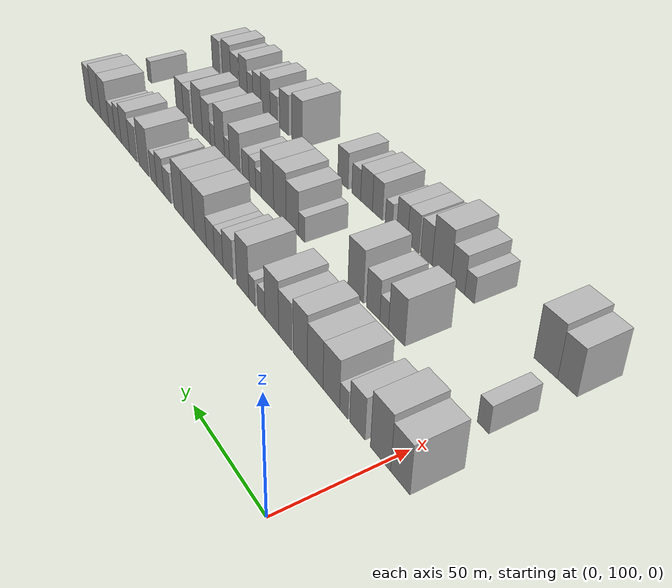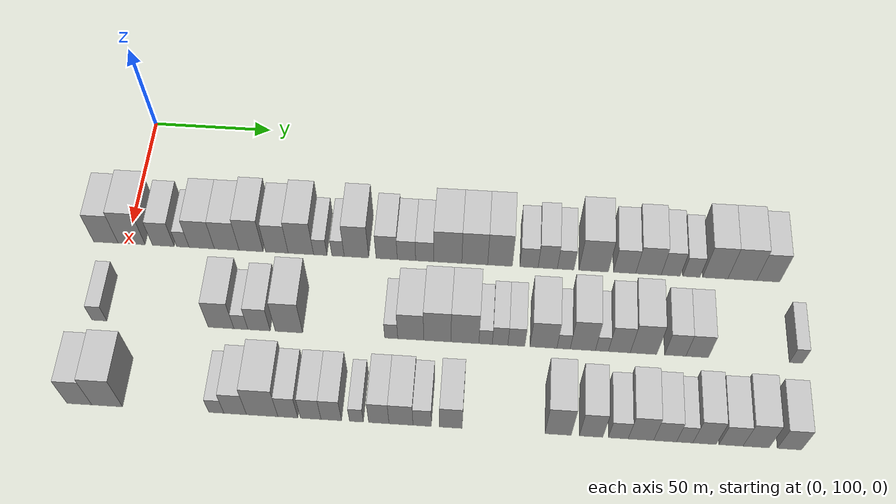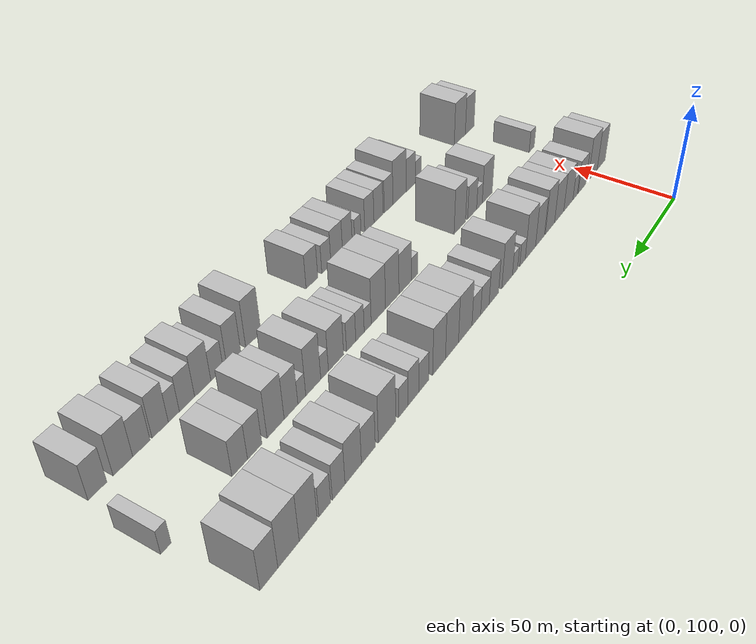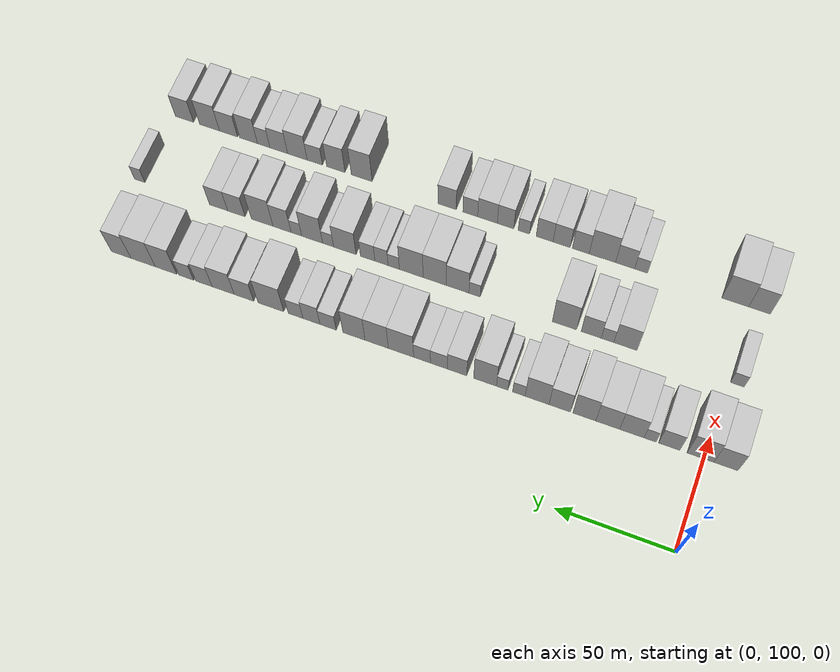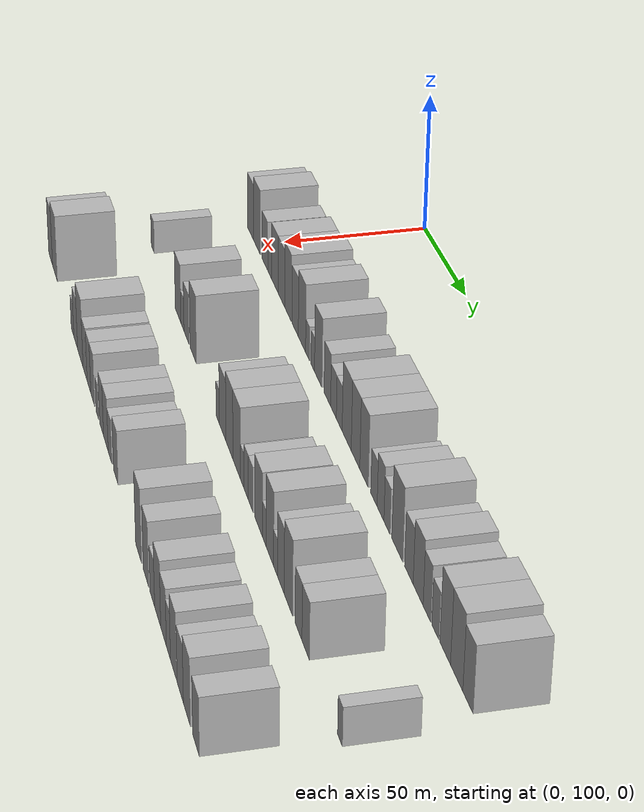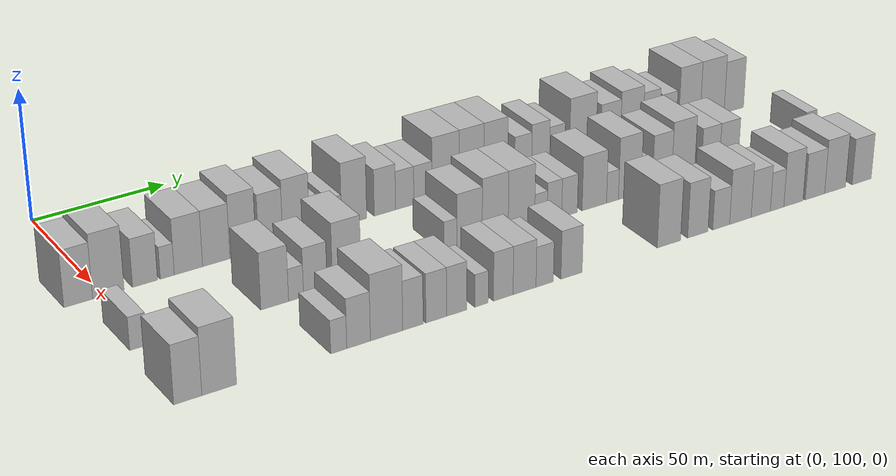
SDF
<sdf version="1.6">
 <world name="default">
  <model name="building_49">
   <static>1</static>
   <pose>50.0000 91.0026 0 0.000000 0.000000 0.000000</pose>
   <link name="link">
    <pose>0 0 10.50 0 0 0</pose>
    <collision name="collision"><geometry><box><size>20.0000 10.0822 21.0000</size></box></geometry></collision>
    <visual name="visual">
     <cast_shadows>0</cast_shadows>
     <geometry><box><size>20.0000 10.0822 21.0000</size></box></geometry>
     <material>
      <script>
       <uri>model://HANNAS_wall/materials/scripts</uri>
       <uri>model://HANNAS_wall/materials/textures</uri>
       <name>vrc/HANNAS_wall</name>
      </script>
     </material>
    </visual>
   </link>
  </model>
  <model name="building_50">
   <static>1</static>
   <pose>50.0000 101.6119 0 0.000000 0.000000 0.000000</pose>
   <link name="link">
    <pose>0 0 12.00 0 0 0</pose>
    <collision name="collision"><geometry><box><size>20.0000 11.1366 24.0000</size></box></geometry></collision>
    <visual name="visual">
     <cast_shadows>0</cast_shadows>
     <geometry><box><size>20.0000 11.1366 24.0000</size></box></geometry>
     <material>
      <script>
       <uri>model://HANNAS_wall/materials/scripts</uri>
       <uri>model://HANNAS_wall/materials/textures</uri>
       <name>vrc/HANNAS_wall</name>
      </script>
     </material>
    </visual>
   </link>
  </model>
  <model name="building_51">
   <static>1</static>
   <pose>50.0000 114.6626 0 0.000000 0.000000 0.000000</pose>
   <link name="link">
    <pose>0 0 9.00 0 0 0</pose>
    <collision name="collision"><geometry><box><size>20.0000 8.9647 18.0000</size></box></geometry></collision>
    <visual name="visual">
     <cast_shadows>0</cast_shadows>
     <geometry><box><size>20.0000 8.9647 18.0000</size></box></geometry>
     <material>
      <script>
       <uri>model://HANNAS_wall/materials/scripts</uri>
       <uri>model://HANNAS_wall/materials/textures</uri>
       <name>vrc/HANNAS_wall</name>
      </script>
     </material>
    </visual>
   </link>
  </model>
  <model name="building_52">
   <static>1</static>
   <pose>50.0000 122.6843 0 0.000000 0.000000 0.000000</pose>
   <link name="link">
    <pose>0 0 6.00 0 0 0</pose>
    <collision name="collision"><geometry><box><size>20.0000 5.0787 12.0000</size></box></geometry></collision>
    <visual name="visual">
     <cast_shadows>0</cast_shadows>
     <geometry><box><size>20.0000 5.0787 12.0000</size></box></geometry>
     <material>
      <script>
       <uri>model://HANNAS_wall/materials/scripts</uri>
       <uri>model://HANNAS_wall/materials/textures</uri>
       <name>vrc/HANNAS_wall</name>
      </script>
     </material>
    </visual>
   </link>
  </model>
  <model name="building_53">
   <static>1</static>
   <pose>50.0000 130.4150 0 0.000000 0.000000 0.000000</pose>
   <link name="link">
    <pose>0 0 10.50 0 0 0</pose>
    <collision name="collision"><geometry><box><size>20.0000 10.3826 21.0000</size></box></geometry></collision>
    <visual name="visual">
     <cast_shadows>0</cast_shadows>
     <geometry><box><size>20.0000 10.3826 21.0000</size></box></geometry>
     <material>
      <script>
       <uri>model://HANNAS_wall/materials/scripts</uri>
       <uri>model://HANNAS_wall/materials/textures</uri>
       <name>vrc/HANNAS_wall</name>
      </script>
     </material>
    </visual>
   </link>
  </model>
  <model name="building_54">
   <static>1</static>
   <pose>50.0000 140.6762 0 0.000000 0.000000 0.000000</pose>
   <link name="link">
    <pose>0 0 10.50 0 0 0</pose>
    <collision name="collision"><geometry><box><size>20.0000 10.1399 21.0000</size></box></geometry></collision>
    <visual name="visual">
     <cast_shadows>0</cast_shadows>
     <geometry><box><size>20.0000 10.1399 21.0000</size></box></geometry>
     <material>
      <script>
       <uri>model://HANNAS_wall/materials/scripts</uri>
       <uri>model://HANNAS_wall/materials/textures</uri>
       <name>vrc/HANNAS_wall</name>
      </script>
     </material>
    </visual>
   </link>
  </model>
  <model name="building_55">
   <static>1</static>
   <pose>50.0000 150.6441 0 0.000000 0.000000 0.000000</pose>
   <link name="link">
    <pose>0 0 12.00 0 0 0</pose>
    <collision name="collision"><geometry><box><size>20.0000 9.7958 24.0000</size></box></geometry></collision>
    <visual name="visual">
     <cast_shadows>0</cast_shadows>
     <geometry><box><size>20.0000 9.7958 24.0000</size></box></geometry>
     <material>
      <script>
       <uri>model://HANNAS_wall/materials/scripts</uri>
       <uri>model://HANNAS_wall/materials/textures</uri>
       <name>vrc/HANNAS_wall</name>
      </script>
     </material>
    </visual>
   </link>
  </model>
  <model name="building_56">
   <static>1</static>
   <pose>50.0000 161.1490 0 0.000000 0.000000 0.000000</pose>
   <link name="link">
    <pose>0 0 10.50 0 0 0</pose>
    <collision name="collision"><geometry><box><size>20.0000 9.2140 21.0000</size></box></geometry></collision>
    <visual name="visual">
     <cast_shadows>0</cast_shadows>
     <geometry><box><size>20.0000 9.2140 21.0000</size></box></geometry>
     <material>
      <script>
       <uri>model://HANNAS_wall/materials/scripts</uri>
       <uri>model://HANNAS_wall/materials/textures</uri>
       <name>vrc/HANNAS_wall</name>
      </script>
     </material>
    </visual>
   </link>
  </model>
  <model name="building_57">
   <static>1</static>
   <pose>50.0000 170.9249 0 0.000000 0.000000 0.000000</pose>
   <link name="link">
    <pose>0 0 12.00 0 0 0</pose>
    <collision name="collision"><geometry><box><size>20.0000 10.3378 24.0000</size></box></geometry></collision>
    <visual name="visual">
     <cast_shadows>0</cast_shadows>
     <geometry><box><size>20.0000 10.3378 24.0000</size></box></geometry>
     <material>
      <script>
       <uri>model://HANNAS_wall/materials/scripts</uri>
       <uri>model://HANNAS_wall/materials/textures</uri>
       <name>vrc/HANNAS_wall</name>
      </script>
     </material>
    </visual>
   </link>
  </model>
  <model name="building_58">
   <static>1</static>
   <pose>50.0000 178.8278 0 0.000000 0.000000 0.000000</pose>
   <link name="link">
    <pose>0 0 6.00 0 0 0</pose>
    <collision name="collision"><geometry><box><size>20.0000 5.4681 12.0000</size></box></geometry></collision>
    <visual name="visual">
     <cast_shadows>0</cast_shadows>
     <geometry><box><size>20.0000 5.4681 12.0000</size></box></geometry>
     <material>
      <script>
       <uri>model://HANNAS_wall/materials/scripts</uri>
       <uri>model://HANNAS_wall/materials/textures</uri>
       <name>vrc/HANNAS_wall</name>
      </script>
     </material>
    </visual>
   </link>
  </model>
  <model name="building_59">
   <static>1</static>
   <pose>50.0000 186.0637 0 0.000000 0.000000 0.000000</pose>
   <link name="link">
    <pose>0 0 6.00 0 0 0</pose>
    <collision name="collision"><geometry><box><size>20.0000 5.0036 12.0000</size></box></geometry></collision>
    <visual name="visual">
     <cast_shadows>0</cast_shadows>
     <geometry><box><size>20.0000 5.0036 12.0000</size></box></geometry>
     <material>
      <script>
       <uri>model://HANNAS_wall/materials/scripts</uri>
       <uri>model://HANNAS_wall/materials/textures</uri>
       <name>vrc/HANNAS_wall</name>
      </script>
     </material>
    </visual>
   </link>
  </model>
  <model name="building_60">
   <static>1</static>
   <pose>50.0000 193.5374 0 0.000000 0.000000 0.000000</pose>
   <link name="link">
    <pose>0 0 12.00 0 0 0</pose>
    <collision name="collision"><geometry><box><size>20.0000 9.9438 24.0000</size></box></geometry></collision>
    <visual name="visual">
     <cast_shadows>0</cast_shadows>
     <geometry><box><size>20.0000 9.9438 24.0000</size></box></geometry>
     <material>
      <script>
       <uri>model://HANNAS_wall/materials/scripts</uri>
       <uri>model://HANNAS_wall/materials/textures</uri>
       <name>vrc/HANNAS_wall</name>
      </script>
     </material>
    </visual>
   </link>
  </model>
  <model name="building_61">
   <static>1</static>
   <pose>50.0000 205.8110 0 0.000000 0.000000 0.000000</pose>
   <link name="link">
    <pose>0 0 9.00 0 0 0</pose>
    <collision name="collision"><geometry><box><size>20.0000 8.6033 18.0000</size></box></geometry></collision>
    <visual name="visual">
     <cast_shadows>0</cast_shadows>
     <geometry><box><size>20.0000 8.6033 18.0000</size></box></geometry>
     <material>
      <script>
       <uri>model://HANNAS_wall/materials/scripts</uri>
       <uri>model://HANNAS_wall/materials/textures</uri>
       <name>vrc/HANNAS_wall</name>
      </script>
     </material>
    </visual>
   </link>
  </model>
  <model name="building_62">
   <static>1</static>
   <pose>50.0000 213.8199 0 0.000000 0.000000 0.000000</pose>
   <link name="link">
    <pose>0 0 7.50 0 0 0</pose>
    <collision name="collision"><geometry><box><size>20.0000 7.4147 15.0000</size></box></geometry></collision>
    <visual name="visual">
     <cast_shadows>0</cast_shadows>
     <geometry><box><size>20.0000 7.4147 15.0000</size></box></geometry>
     <material>
      <script>
       <uri>model://HANNAS_wall/materials/scripts</uri>
       <uri>model://HANNAS_wall/materials/textures</uri>
       <name>vrc/HANNAS_wall</name>
      </script>
     </material>
    </visual>
   </link>
  </model>
  <model name="building_63">
   <static>1</static>
   <pose>50.0000 221.2296 0 0.000000 0.000000 0.000000</pose>
   <link name="link">
    <pose>0 0 7.50 0 0 0</pose>
    <collision name="collision"><geometry><box><size>20.0000 7.4047 15.0000</size></box></geometry></collision>
    <visual name="visual">
     <cast_shadows>0</cast_shadows>
     <geometry><box><size>20.0000 7.4047 15.0000</size></box></geometry>
     <material>
      <script>
       <uri>model://HANNAS_wall/materials/scripts</uri>
       <uri>model://HANNAS_wall/materials/textures</uri>
       <name>vrc/HANNAS_wall</name>
      </script>
     </material>
    </visual>
   </link>
  </model>
  <model name="building_64">
   <static>1</static>
   <pose>50.0000 230.5645 0 0.000000 0.000000 0.000000</pose>
   <link name="link">
    <pose>0 0 12.00 0 0 0</pose>
    <collision name="collision"><geometry><box><size>20.0000 11.2650 24.0000</size></box></geometry></collision>
    <visual name="visual">
     <cast_shadows>0</cast_shadows>
     <geometry><box><size>20.0000 11.2650 24.0000</size></box></geometry>
     <material>
      <script>
       <uri>model://HANNAS_wall/materials/scripts</uri>
       <uri>model://HANNAS_wall/materials/textures</uri>
       <name>vrc/HANNAS_wall</name>
      </script>
     </material>
    </visual>
   </link>
  </model>
  <model name="building_65">
   <static>1</static>
   <pose>50.0000 241.3968 0 0.000000 0.000000 0.000000</pose>
   <link name="link">
    <pose>0 0 12.00 0 0 0</pose>
    <collision name="collision"><geometry><box><size>20.0000 10.3996 24.0000</size></box></geometry></collision>
    <visual name="visual">
     <cast_shadows>0</cast_shadows>
     <geometry><box><size>20.0000 10.3996 24.0000</size></box></geometry>
     <material>
      <script>
       <uri>model://HANNAS_wall/materials/scripts</uri>
       <uri>model://HANNAS_wall/materials/textures</uri>
       <name>vrc/HANNAS_wall</name>
      </script>
     </material>
    </visual>
   </link>
  </model>
  <model name="building_66">
   <static>1</static>
   <pose>50.0000 251.5735 0 0.000000 0.000000 0.000000</pose>
   <link name="link">
    <pose>0 0 12.00 0 0 0</pose>
    <collision name="collision"><geometry><box><size>20.0000 9.9537 24.0000</size></box></geometry></collision>
    <visual name="visual">
     <cast_shadows>0</cast_shadows>
     <geometry><box><size>20.0000 9.9537 24.0000</size></box></geometry>
     <material>
      <script>
       <uri>model://HANNAS_wall/materials/scripts</uri>
       <uri>model://HANNAS_wall/materials/textures</uri>
       <name>vrc/HANNAS_wall</name>
      </script>
     </material>
    </visual>
   </link>
  </model>
  <model name="building_67">
   <static>1</static>
   <pose>50.0000 263.2214 0 0.000000 0.000000 0.000000</pose>
   <link name="link">
    <pose>0 0 7.50 0 0 0</pose>
    <collision name="collision"><geometry><box><size>20.0000 7.3422 15.0000</size></box></geometry></collision>
    <visual name="visual">
     <cast_shadows>0</cast_shadows>
     <geometry><box><size>20.0000 7.3422 15.0000</size></box></geometry>
     <material>
      <script>
       <uri>model://HANNAS_wall/materials/scripts</uri>
       <uri>model://HANNAS_wall/materials/textures</uri>
       <name>vrc/HANNAS_wall</name>
      </script>
     </material>
    </visual>
   </link>
  </model>
  <model name="building_68">
   <static>1</static>
   <pose>50.0000 270.7523 0 0.000000 0.000000 0.000000</pose>
   <link name="link">
    <pose>0 0 9.00 0 0 0</pose>
    <collision name="collision"><geometry><box><size>20.0000 7.7197 18.0000</size></box></geometry></collision>
    <visual name="visual">
     <cast_shadows>0</cast_shadows>
     <geometry><box><size>20.0000 7.7197 18.0000</size></box></geometry>
     <material>
      <script>
       <uri>model://HANNAS_wall/materials/scripts</uri>
       <uri>model://HANNAS_wall/materials/textures</uri>
       <name>vrc/HANNAS_wall</name>
      </script>
     </material>
    </visual>
   </link>
  </model>
  <model name="building_69">
   <static>1</static>
   <pose>50.0000 277.9587 0 0.000000 0.000000 0.000000</pose>
   <link name="link">
    <pose>0 0 7.50 0 0 0</pose>
    <collision name="collision"><geometry><box><size>20.0000 6.6931 15.0000</size></box></geometry></collision>
    <visual name="visual">
     <cast_shadows>0</cast_shadows>
     <geometry><box><size>20.0000 6.6931 15.0000</size></box></geometry>
     <material>
      <script>
       <uri>model://HANNAS_wall/materials/scripts</uri>
       <uri>model://HANNAS_wall/materials/textures</uri>
       <name>vrc/HANNAS_wall</name>
      </script>
     </material>
    </visual>
   </link>
  </model>
  <model name="building_70">
   <static>1</static>
   <pose>50.0000 289.1999 0 0.000000 0.000000 0.000000</pose>
   <link name="link">
    <pose>0 0 12.00 0 0 0</pose>
    <collision name="collision"><geometry><box><size>20.0000 11.7892 24.0000</size></box></geometry></collision>
    <visual name="visual">
     <cast_shadows>0</cast_shadows>
     <geometry><box><size>20.0000 11.7892 24.0000</size></box></geometry>
     <material>
      <script>
       <uri>model://HANNAS_wall/materials/scripts</uri>
       <uri>model://HANNAS_wall/materials/textures</uri>
       <name>vrc/HANNAS_wall</name>
      </script>
     </material>
    </visual>
   </link>
  </model>
  <model name="building_71">
   <static>1</static>
   <pose>50.0000 301.5697 0 0.000000 0.000000 0.000000</pose>
   <link name="link">
    <pose>0 0 9.00 0 0 0</pose>
    <collision name="collision"><geometry><box><size>20.0000 8.9505 18.0000</size></box></geometry></collision>
    <visual name="visual">
     <cast_shadows>0</cast_shadows>
     <geometry><box><size>20.0000 8.9505 18.0000</size></box></geometry>
     <material>
      <script>
       <uri>model://HANNAS_wall/materials/scripts</uri>
       <uri>model://HANNAS_wall/materials/textures</uri>
       <name>vrc/HANNAS_wall</name>
      </script>
     </material>
    </visual>
   </link>
  </model>
  <model name="building_72">
   <static>1</static>
   <pose>50.0000 311.1379 0 0.000000 0.000000 0.000000</pose>
   <link name="link">
    <pose>0 0 10.50 0 0 0</pose>
    <collision name="collision"><geometry><box><size>20.0000 10.1859 21.0000</size></box></geometry></collision>
    <visual name="visual">
     <cast_shadows>0</cast_shadows>
     <geometry><box><size>20.0000 10.1859 21.0000</size></box></geometry>
     <material>
      <script>
       <uri>model://HANNAS_wall/materials/scripts</uri>
       <uri>model://HANNAS_wall/materials/textures</uri>
       <name>vrc/HANNAS_wall</name>
      </script>
     </material>
    </visual>
   </link>
  </model>
  <model name="building_73">
   <static>1</static>
   <pose>50.0000 320.0278 0 0.000000 0.000000 0.000000</pose>
   <link name="link">
    <pose>0 0 9.00 0 0 0</pose>
    <collision name="collision"><geometry><box><size>20.0000 7.5940 18.0000</size></box></geometry></collision>
    <visual name="visual">
     <cast_shadows>0</cast_shadows>
     <geometry><box><size>20.0000 7.5940 18.0000</size></box></geometry>
     <material>
      <script>
       <uri>model://HANNAS_wall/materials/scripts</uri>
       <uri>model://HANNAS_wall/materials/textures</uri>
       <name>vrc/HANNAS_wall</name>
      </script>
     </material>
    </visual>
   </link>
  </model>
  <model name="building_74">
   <static>1</static>
   <pose>50.0000 328.2696 0 0.000000 0.000000 0.000000</pose>
   <link name="link">
    <pose>0 0 7.50 0 0 0</pose>
    <collision name="collision"><geometry><box><size>20.0000 6.8896 15.0000</size></box></geometry></collision>
    <visual name="visual">
     <cast_shadows>0</cast_shadows>
     <geometry><box><size>20.0000 6.8896 15.0000</size></box></geometry>
     <material>
      <script>
       <uri>model://HANNAS_wall/materials/scripts</uri>
       <uri>model://HANNAS_wall/materials/textures</uri>
       <name>vrc/HANNAS_wall</name>
      </script>
     </material>
    </visual>
   </link>
  </model>
  <model name="building_75">
   <static>1</static>
   <pose>50.0000 337.7371 0 0.000000 0.000000 0.000000</pose>
   <link name="link">
    <pose>0 0 12.00 0 0 0</pose>
    <collision name="collision"><geometry><box><size>20.0000 10.0455 24.0000</size></box></geometry></collision>
    <visual name="visual">
     <cast_shadows>0</cast_shadows>
     <geometry><box><size>20.0000 10.0455 24.0000</size></box></geometry>
     <material>
      <script>
       <uri>model://HANNAS_wall/materials/scripts</uri>
       <uri>model://HANNAS_wall/materials/textures</uri>
       <name>vrc/HANNAS_wall</name>
      </script>
     </material>
    </visual>
   </link>
  </model>
  <model name="building_76">
   <static>1</static>
   <pose>50.0000 348.4761 0 0.000000 0.000000 0.000000</pose>
   <link name="link">
    <pose>0 0 12.00 0 0 0</pose>
    <collision name="collision"><geometry><box><size>20.0000 11.4326 24.0000</size></box></geometry></collision>
    <visual name="visual">
     <cast_shadows>0</cast_shadows>
     <geometry><box><size>20.0000 11.4326 24.0000</size></box></geometry>
     <material>
      <script>
       <uri>model://HANNAS_wall/materials/scripts</uri>
       <uri>model://HANNAS_wall/materials/textures</uri>
       <name>vrc/HANNAS_wall</name>
      </script>
     </material>
    </visual>
   </link>
  </model>
  <model name="building_77">
   <static>1</static>
   <pose>50.0000 358.8108 0 0.000000 0.000000 0.000000</pose>
   <link name="link">
    <pose>0 0 10.50 0 0 0</pose>
    <collision name="collision"><geometry><box><size>20.0000 9.2367 21.0000</size></box></geometry></collision>
    <visual name="visual">
     <cast_shadows>0</cast_shadows>
     <geometry><box><size>20.0000 9.2367 21.0000</size></box></geometry>
     <material>
      <script>
       <uri>model://HANNAS_wall/materials/scripts</uri>
       <uri>model://HANNAS_wall/materials/textures</uri>
       <name>vrc/HANNAS_wall</name>
      </script>
     </material>
    </visual>
   </link>
  </model>
  <model name="building_128">
   <static>1</static>
   <pose>85.0000 95.9503 0 0.000000 0.000000 0.000000</pose>
   <link name="link">
    <pose>0 0 6.00 0 0 0</pose>
    <collision name="collision"><geometry><box><size>20.0000 5.8970 12.0000</size></box></geometry></collision>
    <visual name="visual">
     <cast_shadows>0</cast_shadows>
     <geometry><box><size>20.0000 5.8970 12.0000</size></box></geometry>
     <material>
      <script>
       <uri>model://HANNAS_wall/materials/scripts</uri>
       <uri>model://HANNAS_wall/materials/textures</uri>
       <name>vrc/HANNAS_wall</name>
      </script>
     </material>
    </visual>
   </link>
  </model>
  <model name="building_129">
   <static>1</static>
   <pose>85.0000 144.0630 0 0.000000 0.000000 0.000000</pose>
   <link name="link">
    <pose>0 0 10.50 0 0 0</pose>
    <collision name="collision"><geometry><box><size>20.0000 10.1094 21.0000</size></box></geometry></collision>
    <visual name="visual">
     <cast_shadows>0</cast_shadows>
     <geometry><box><size>20.0000 10.1094 21.0000</size></box></geometry>
     <material>
      <script>
       <uri>model://HANNAS_wall/materials/scripts</uri>
       <uri>model://HANNAS_wall/materials/textures</uri>
       <name>vrc/HANNAS_wall</name>
      </script>
     </material>
    </visual>
   </link>
  </model>
  <model name="building_130">
   <static>1</static>
   <pose>85.0000 151.8781 0 0.000000 0.000000 0.000000</pose>
   <link name="link">
    <pose>0 0 6.00 0 0 0</pose>
    <collision name="collision"><geometry><box><size>20.0000 5.5207 12.0000</size></box></geometry></collision>
    <visual name="visual">
     <cast_shadows>0</cast_shadows>
     <geometry><box><size>20.0000 5.5207 12.0000</size></box></geometry>
     <material>
      <script>
       <uri>model://HANNAS_wall/materials/scripts</uri>
       <uri>model://HANNAS_wall/materials/textures</uri>
       <name>vrc/HANNAS_wall</name>
      </script>
     </material>
    </visual>
   </link>
  </model>
  <model name="building_131">
   <static>1</static>
   <pose>85.0000 159.0152 0 0.000000 0.000000 0.000000</pose>
   <link name="link">
    <pose>0 0 9.00 0 0 0</pose>
    <collision name="collision"><geometry><box><size>20.0000 8.7534 18.0000</size></box></geometry></collision>
    <visual name="visual">
     <cast_shadows>0</cast_shadows>
     <geometry><box><size>20.0000 8.7534 18.0000</size></box></geometry>
     <material>
      <script>
       <uri>model://HANNAS_wall/materials/scripts</uri>
       <uri>model://HANNAS_wall/materials/textures</uri>
       <name>vrc/HANNAS_wall</name>
      </script>
     </material>
    </visual>
   </link>
  </model>
  <model name="building_132">
   <static>1</static>
   <pose>85.0000 170.7485 0 0.000000 0.000000 0.000000</pose>
   <link name="link">
    <pose>0 0 12.00 0 0 0</pose>
    <collision name="collision"><geometry><box><size>20.0000 10.7132 24.0000</size></box></geometry></collision>
    <visual name="visual">
     <cast_shadows>0</cast_shadows>
     <geometry><box><size>20.0000 10.7132 24.0000</size></box></geometry>
     <material>
      <script>
       <uri>model://HANNAS_wall/materials/scripts</uri>
       <uri>model://HANNAS_wall/materials/textures</uri>
       <name>vrc/HANNAS_wall</name>
      </script>
     </material>
    </visual>
   </link>
  </model>
  <model name="building_133">
   <static>1</static>
   <pose>85.0000 210.7215 0 0.000000 0.000000 0.000000</pose>
   <link name="link">
    <pose>0 0 6.00 0 0 0</pose>
    <collision name="collision"><geometry><box><size>20.0000 5.0776 12.0000</size></box></geometry></collision>
    <visual name="visual">
     <cast_shadows>0</cast_shadows>
     <geometry><box><size>20.0000 5.0776 12.0000</size></box></geometry>
     <material>
      <script>
       <uri>model://HANNAS_wall/materials/scripts</uri>
       <uri>model://HANNAS_wall/materials/textures</uri>
       <name>vrc/HANNAS_wall</name>
      </script>
     </material>
    </visual>
   </link>
  </model>
  <model name="building_134">
   <static>1</static>
   <pose>85.0000 218.3249 0 0.000000 0.000000 0.000000</pose>
   <link name="link">
    <pose>0 0 10.50 0 0 0</pose>
    <collision name="collision"><geometry><box><size>20.0000 10.1293 21.0000</size></box></geometry></collision>
    <visual name="visual">
     <cast_shadows>0</cast_shadows>
     <geometry><box><size>20.0000 10.1293 21.0000</size></box></geometry>
     <material>
      <script>
       <uri>model://HANNAS_wall/materials/scripts</uri>
       <uri>model://HANNAS_wall/materials/textures</uri>
       <name>vrc/HANNAS_wall</name>
      </script>
     </material>
    </visual>
   </link>
  </model>
  <model name="building_135">
   <static>1</static>
   <pose>85.0000 228.6659 0 0.000000 0.000000 0.000000</pose>
   <link name="link">
    <pose>0 0 12.00 0 0 0</pose>
    <collision name="collision"><geometry><box><size>20.0000 10.5527 24.0000</size></box></geometry></collision>
    <visual name="visual">
     <cast_shadows>0</cast_shadows>
     <geometry><box><size>20.0000 10.5527 24.0000</size></box></geometry>
     <material>
      <script>
       <uri>model://HANNAS_wall/materials/scripts</uri>
       <uri>model://HANNAS_wall/materials/textures</uri>
       <name>vrc/HANNAS_wall</name>
      </script>
     </material>
    </visual>
   </link>
  </model>
  <model name="building_136">
   <static>1</static>
   <pose>85.0000 239.3624 0 0.000000 0.000000 0.000000</pose>
   <link name="link">
    <pose>0 0 12.00 0 0 0</pose>
    <collision name="collision"><geometry><box><size>20.0000 10.8403 24.0000</size></box></geometry></collision>
    <visual name="visual">
     <cast_shadows>0</cast_shadows>
     <geometry><box><size>20.0000 10.8403 24.0000</size></box></geometry>
     <material>
      <script>
       <uri>model://HANNAS_wall/materials/scripts</uri>
       <uri>model://HANNAS_wall/materials/textures</uri>
       <name>vrc/HANNAS_wall</name>
      </script>
     </material>
    </visual>
   </link>
  </model>
  <model name="building_137">
   <static>1</static>
   <pose>85.0000 247.3689 0 0.000000 0.000000 0.000000</pose>
   <link name="link">
    <pose>0 0 6.00 0 0 0</pose>
    <collision name="collision"><geometry><box><size>20.0000 5.1728 12.0000</size></box></geometry></collision>
    <visual name="visual">
     <cast_shadows>0</cast_shadows>
     <geometry><box><size>20.0000 5.1728 12.0000</size></box></geometry>
     <material>
      <script>
       <uri>model://HANNAS_wall/materials/scripts</uri>
       <uri>model://HANNAS_wall/materials/textures</uri>
       <name>vrc/HANNAS_wall</name>
      </script>
     </material>
    </visual>
   </link>
  </model>
  <model name="building_138">
   <static>1</static>
   <pose>85.0000 252.9789 0 0.000000 0.000000 0.000000</pose>
   <link name="link">
    <pose>0 0 7.50 0 0 0</pose>
    <collision name="collision"><geometry><box><size>20.0000 6.0472 15.0000</size></box></geometry></collision>
    <visual name="visual">
     <cast_shadows>0</cast_shadows>
     <geometry><box><size>20.0000 6.0472 15.0000</size></box></geometry>
     <material>
      <script>
       <uri>model://HANNAS_wall/materials/scripts</uri>
       <uri>model://HANNAS_wall/materials/textures</uri>
       <name>vrc/HANNAS_wall</name>
      </script>
     </material>
    </visual>
   </link>
  </model>
  <model name="building_139">
   <static>1</static>
   <pose>85.0000 259.3044 0 0.000000 0.000000 0.000000</pose>
   <link name="link">
    <pose>0 0 7.50 0 0 0</pose>
    <collision name="collision"><geometry><box><size>20.0000 6.6037 15.0000</size></box></geometry></collision>
    <visual name="visual">
     <cast_shadows>0</cast_shadows>
     <geometry><box><size>20.0000 6.6037 15.0000</size></box></geometry>
     <material>
      <script>
       <uri>model://HANNAS_wall/materials/scripts</uri>
       <uri>model://HANNAS_wall/materials/textures</uri>
       <name>vrc/HANNAS_wall</name>
      </script>
     </material>
    </visual>
   </link>
  </model>
  <model name="building_140">
   <static>1</static>
   <pose>85.0000 269.8000 0 0.000000 0.000000 0.000000</pose>
   <link name="link">
    <pose>0 0 10.50 0 0 0</pose>
    <collision name="collision"><geometry><box><size>20.0000 10.3875 21.0000</size></box></geometry></collision>
    <visual name="visual">
     <cast_shadows>0</cast_shadows>
     <geometry><box><size>20.0000 10.3875 21.0000</size></box></geometry>
     <material>
      <script>
       <uri>model://HANNAS_wall/materials/scripts</uri>
       <uri>model://HANNAS_wall/materials/textures</uri>
       <name>vrc/HANNAS_wall</name>
      </script>
     </material>
    </visual>
   </link>
  </model>
  <model name="building_141">
   <static>1</static>
   <pose>85.0000 277.5413 0 0.000000 0.000000 0.000000</pose>
   <link name="link">
    <pose>0 0 6.00 0 0 0</pose>
    <collision name="collision"><geometry><box><size>20.0000 5.0951 12.0000</size></box></geometry></collision>
    <visual name="visual">
     <cast_shadows>0</cast_shadows>
     <geometry><box><size>20.0000 5.0951 12.0000</size></box></geometry>
     <material>
      <script>
       <uri>model://HANNAS_wall/materials/scripts</uri>
       <uri>model://HANNAS_wall/materials/textures</uri>
       <name>vrc/HANNAS_wall</name>
      </script>
     </material>
    </visual>
   </link>
  </model>
  <model name="building_142">
   <static>1</static>
   <pose>85.0000 284.9587 0 0.000000 0.000000 0.000000</pose>
   <link name="link">
    <pose>0 0 12.00 0 0 0</pose>
    <collision name="collision"><geometry><box><size>20.0000 9.7397 24.0000</size></box></geometry></collision>
    <visual name="visual">
     <cast_shadows>0</cast_shadows>
     <geometry><box><size>20.0000 9.7397 24.0000</size></box></geometry>
     <material>
      <script>
       <uri>model://HANNAS_wall/materials/scripts</uri>
       <uri>model://HANNAS_wall/materials/textures</uri>
       <name>vrc/HANNAS_wall</name>
      </script>
     </material>
    </visual>
   </link>
  </model>
  <model name="building_143">
   <static>1</static>
   <pose>85.0000 292.3170 0 0.000000 0.000000 0.000000</pose>
   <link name="link">
    <pose>0 0 6.00 0 0 0</pose>
    <collision name="collision"><geometry><box><size>20.0000 4.9768 12.0000</size></box></geometry></collision>
    <visual name="visual">
     <cast_shadows>0</cast_shadows>
     <geometry><box><size>20.0000 4.9768 12.0000</size></box></geometry>
     <material>
      <script>
       <uri>model://HANNAS_wall/materials/scripts</uri>
       <uri>model://HANNAS_wall/materials/textures</uri>
       <name>vrc/HANNAS_wall</name>
      </script>
     </material>
    </visual>
   </link>
  </model>
  <model name="building_144">
   <static>1</static>
   <pose>85.0000 299.0355 0 0.000000 0.000000 0.000000</pose>
   <link name="link">
    <pose>0 0 10.50 0 0 0</pose>
    <collision name="collision"><geometry><box><size>20.0000 8.4603 21.0000</size></box></geometry></collision>
    <visual name="visual">
     <cast_shadows>0</cast_shadows>
     <geometry><box><size>20.0000 8.4603 21.0000</size></box></geometry>
     <material>
      <script>
       <uri>model://HANNAS_wall/materials/scripts</uri>
       <uri>model://HANNAS_wall/materials/textures</uri>
       <name>vrc/HANNAS_wall</name>
      </script>
     </material>
    </visual>
   </link>
  </model>
  <model name="building_145">
   <static>1</static>
   <pose>85.0000 308.3606 0 0.000000 0.000000 0.000000</pose>
   <link name="link">
    <pose>0 0 12.00 0 0 0</pose>
    <collision name="collision"><geometry><box><size>20.0000 10.1898 24.0000</size></box></geometry></collision>
    <visual name="visual">
     <cast_shadows>0</cast_shadows>
     <geometry><box><size>20.0000 10.1898 24.0000</size></box></geometry>
     <material>
      <script>
       <uri>model://HANNAS_wall/materials/scripts</uri>
       <uri>model://HANNAS_wall/materials/textures</uri>
       <name>vrc/HANNAS_wall</name>
      </script>
     </material>
    </visual>
   </link>
  </model>
  <model name="building_146">
   <static>1</static>
   <pose>85.0000 320.5448 0 0.000000 0.000000 0.000000</pose>
   <link name="link">
    <pose>0 0 9.00 0 0 0</pose>
    <collision name="collision"><geometry><box><size>20.0000 8.1785 18.0000</size></box></geometry></collision>
    <visual name="visual">
     <cast_shadows>0</cast_shadows>
     <geometry><box><size>20.0000 8.1785 18.0000</size></box></geometry>
     <material>
      <script>
       <uri>model://HANNAS_wall/materials/scripts</uri>
       <uri>model://HANNAS_wall/materials/textures</uri>
       <name>vrc/HANNAS_wall</name>
      </script>
     </material>
    </visual>
   </link>
  </model>
  <model name="building_147">
   <static>1</static>
   <pose>85.0000 328.9336 0 0.000000 0.000000 0.000000</pose>
   <link name="link">
    <pose>0 0 9.00 0 0 0</pose>
    <collision name="collision"><geometry><box><size>20.0000 8.5991 18.0000</size></box></geometry></collision>
    <visual name="visual">
     <cast_shadows>0</cast_shadows>
     <geometry><box><size>20.0000 8.5991 18.0000</size></box></geometry>
     <material>
      <script>
       <uri>model://HANNAS_wall/materials/scripts</uri>
       <uri>model://HANNAS_wall/materials/textures</uri>
       <name>vrc/HANNAS_wall</name>
      </script>
     </material>
    </visual>
   </link>
  </model>
  <model name="building_148">
   <static>1</static>
   <pose>85.0000 366.7203 0 0.000000 0.000000 0.000000</pose>
   <link name="link">
    <pose>0 0 6.00 0 0 0</pose>
    <collision name="collision"><geometry><box><size>20.0000 4.9914 12.0000</size></box></geometry></collision>
    <visual name="visual">
     <cast_shadows>0</cast_shadows>
     <geometry><box><size>20.0000 4.9914 12.0000</size></box></geometry>
     <material>
      <script>
       <uri>model://HANNAS_wall/materials/scripts</uri>
       <uri>model://HANNAS_wall/materials/textures</uri>
       <name>vrc/HANNAS_wall</name>
      </script>
     </material>
    </visual>
   </link>
  </model>
  <model name="building_197">
   <static>1</static>
   <pose>120.0000 95.9417 0 0.000000 0.000000 0.000000</pose>
   <link name="link">
    <pose>0 0 10.50 0 0 0</pose>
    <collision name="collision"><geometry><box><size>20.0000 9.4212 21.0000</size></box></geometry></collision>
    <visual name="visual">
     <cast_shadows>0</cast_shadows>
     <geometry><box><size>20.0000 9.4212 21.0000</size></box></geometry>
     <material>
      <script>
       <uri>model://HANNAS_wall/materials/scripts</uri>
       <uri>model://HANNAS_wall/materials/textures</uri>
       <name>vrc/HANNAS_wall</name>
      </script>
     </material>
    </visual>
   </link>
  </model>
  <model name="building_198">
   <static>1</static>
   <pose>120.0000 106.5106 0 0.000000 0.000000 0.000000</pose>
   <link name="link">
    <pose>0 0 12.00 0 0 0</pose>
    <collision name="collision"><geometry><box><size>20.0000 11.7167 24.0000</size></box></geometry></collision>
    <visual name="visual">
     <cast_shadows>0</cast_shadows>
     <geometry><box><size>20.0000 11.7167 24.0000</size></box></geometry>
     <material>
      <script>
       <uri>model://HANNAS_wall/materials/scripts</uri>
       <uri>model://HANNAS_wall/materials/textures</uri>
       <name>vrc/HANNAS_wall</name>
      </script>
     </material>
    </visual>
   </link>
  </model>
  <model name="building_199">
   <static>1</static>
   <pose>120.0000 147.9952 0 0.000000 0.000000 0.000000</pose>
   <link name="link">
    <pose>0 0 6.00 0 0 0</pose>
    <collision name="collision"><geometry><box><size>20.0000 5.7508 12.0000</size></box></geometry></collision>
    <visual name="visual">
     <cast_shadows>0</cast_shadows>
     <geometry><box><size>20.0000 5.7508 12.0000</size></box></geometry>
     <material>
      <script>
       <uri>model://HANNAS_wall/materials/scripts</uri>
       <uri>model://HANNAS_wall/materials/textures</uri>
       <name>vrc/HANNAS_wall</name>
      </script>
     </material>
    </visual>
   </link>
  </model>
  <model name="building_200">
   <static>1</static>
   <pose>120.0000 155.1345 0 0.000000 0.000000 0.000000</pose>
   <link name="link">
    <pose>0 0 9.00 0 0 0</pose>
    <collision name="collision"><geometry><box><size>20.0000 8.5278 18.0000</size></box></geometry></collision>
    <visual name="visual">
     <cast_shadows>0</cast_shadows>
     <geometry><box><size>20.0000 8.5278 18.0000</size></box></geometry>
     <material>
      <script>
       <uri>model://HANNAS_wall/materials/scripts</uri>
       <uri>model://HANNAS_wall/materials/textures</uri>
       <name>vrc/HANNAS_wall</name>
      </script>
     </material>
    </visual>
   </link>
  </model>
  <model name="building_201">
   <static>1</static>
   <pose>120.0000 165.3004 0 0.000000 0.000000 0.000000</pose>
   <link name="link">
    <pose>0 0 12.00 0 0 0</pose>
    <collision name="collision"><geometry><box><size>20.0000 11.8042 24.0000</size></box></geometry></collision>
    <visual name="visual">
     <cast_shadows>0</cast_shadows>
     <geometry><box><size>20.0000 11.8042 24.0000</size></box></geometry>
     <material>
      <script>
       <uri>model://HANNAS_wall/materials/scripts</uri>
       <uri>model://HANNAS_wall/materials/textures</uri>
       <name>vrc/HANNAS_wall</name>
      </script>
     </material>
    </visual>
   </link>
  </model>
  <model name="building_202">
   <static>1</static>
   <pose>120.0000 174.9859 0 0.000000 0.000000 0.000000</pose>
   <link name="link">
    <pose>0 0 9.00 0 0 0</pose>
    <collision name="collision"><geometry><box><size>20.0000 7.5668 18.0000</size></box></geometry></collision>
    <visual name="visual">
     <cast_shadows>0</cast_shadows>
     <geometry><box><size>20.0000 7.5668 18.0000</size></box></geometry>
     <material>
      <script>
       <uri>model://HANNAS_wall/materials/scripts</uri>
       <uri>model://HANNAS_wall/materials/textures</uri>
       <name>vrc/HANNAS_wall</name>
      </script>
     </material>
    </visual>
   </link>
  </model>
  <model name="building_203">
   <static>1</static>
   <pose>120.0000 183.6325 0 0.000000 0.000000 0.000000</pose>
   <link name="link">
    <pose>0 0 9.00 0 0 0</pose>
    <collision name="collision"><geometry><box><size>20.0000 7.7262 18.0000</size></box></geometry></collision>
    <visual name="visual">
     <cast_shadows>0</cast_shadows>
     <geometry><box><size>20.0000 7.7262 18.0000</size></box></geometry>
     <material>
      <script>
       <uri>model://HANNAS_wall/materials/scripts</uri>
       <uri>model://HANNAS_wall/materials/textures</uri>
       <name>vrc/HANNAS_wall</name>
      </script>
     </material>
    </visual>
   </link>
  </model>
  <model name="building_204">
   <static>1</static>
   <pose>120.0000 191.3343 0 0.000000 0.000000 0.000000</pose>
   <link name="link">
    <pose>0 0 9.00 0 0 0</pose>
    <collision name="collision"><geometry><box><size>20.0000 7.6775 18.0000</size></box></geometry></collision>
    <visual name="visual">
     <cast_shadows>0</cast_shadows>
     <geometry><box><size>20.0000 7.6775 18.0000</size></box></geometry>
     <material>
      <script>
       <uri>model://HANNAS_wall/materials/scripts</uri>
       <uri>model://HANNAS_wall/materials/textures</uri>
       <name>vrc/HANNAS_wall</name>
      </script>
     </material>
    </visual>
   </link>
  </model>
  <model name="building_205">
   <static>1</static>
   <pose>120.0000 200.7707 0 0.000000 0.000000 0.000000</pose>
   <link name="link">
    <pose>0 0 6.00 0 0 0</pose>
    <collision name="collision"><geometry><box><size>20.0000 5.1953 12.0000</size></box></geometry></collision>
    <visual name="visual">
     <cast_shadows>0</cast_shadows>
     <geometry><box><size>20.0000 5.1953 12.0000</size></box></geometry>
     <material>
      <script>
       <uri>model://HANNAS_wall/materials/scripts</uri>
       <uri>model://HANNAS_wall/materials/textures</uri>
       <name>vrc/HANNAS_wall</name>
      </script>
     </material>
    </visual>
   </link>
  </model>
  <model name="building_206">
   <static>1</static>
   <pose>120.0000 209.1611 0 0.000000 0.000000 0.000000</pose>
   <link name="link">
    <pose>0 0 9.00 0 0 0</pose>
    <collision name="collision"><geometry><box><size>20.0000 7.5854 18.0000</size></box></geometry></collision>
    <visual name="visual">
     <cast_shadows>0</cast_shadows>
     <geometry><box><size>20.0000 7.5854 18.0000</size></box></geometry>
     <material>
      <script>
       <uri>model://HANNAS_wall/materials/scripts</uri>
       <uri>model://HANNAS_wall/materials/textures</uri>
       <name>vrc/HANNAS_wall</name>
      </script>
     </material>
    </visual>
   </link>
  </model>
  <model name="building_207">
   <static>1</static>
   <pose>120.0000 217.4375 0 0.000000 0.000000 0.000000</pose>
   <link name="link">
    <pose>0 0 9.00 0 0 0</pose>
    <collision name="collision"><geometry><box><size>20.0000 8.9673 18.0000</size></box></geometry></collision>
    <visual name="visual">
     <cast_shadows>0</cast_shadows>
     <geometry><box><size>20.0000 8.9673 18.0000</size></box></geometry>
     <material>
      <script>
       <uri>model://HANNAS_wall/materials/scripts</uri>
       <uri>model://HANNAS_wall/materials/textures</uri>
       <name>vrc/HANNAS_wall</name>
      </script>
     </material>
    </visual>
   </link>
  </model>
  <model name="building_208">
   <static>1</static>
   <pose>120.0000 225.3543 0 0.000000 0.000000 0.000000</pose>
   <link name="link">
    <pose>0 0 7.50 0 0 0</pose>
    <collision name="collision"><geometry><box><size>20.0000 6.8663 15.0000</size></box></geometry></collision>
    <visual name="visual">
     <cast_shadows>0</cast_shadows>
     <geometry><box><size>20.0000 6.8663 15.0000</size></box></geometry>
     <material>
      <script>
       <uri>model://HANNAS_wall/materials/scripts</uri>
       <uri>model://HANNAS_wall/materials/textures</uri>
       <name>vrc/HANNAS_wall</name>
      </script>
     </material>
    </visual>
   </link>
  </model>
  <model name="building_209">
   <static>1</static>
   <pose>120.0000 236.0370 0 0.000000 0.000000 0.000000</pose>
   <link name="link">
    <pose>0 0 9.00 0 0 0</pose>
    <collision name="collision"><geometry><box><size>20.0000 8.4990 18.0000</size></box></geometry></collision>
    <visual name="visual">
     <cast_shadows>0</cast_shadows>
     <geometry><box><size>20.0000 8.4990 18.0000</size></box></geometry>
     <material>
      <script>
       <uri>model://HANNAS_wall/materials/scripts</uri>
       <uri>model://HANNAS_wall/materials/textures</uri>
       <name>vrc/HANNAS_wall</name>
      </script>
     </material>
    </visual>
   </link>
  </model>
  <model name="building_210">
   <static>1</static>
   <pose>120.0000 275.9840 0 0.000000 0.000000 0.000000</pose>
   <link name="link">
    <pose>0 0 12.00 0 0 0</pose>
    <collision name="collision"><geometry><box><size>20.0000 9.7984 24.0000</size></box></geometry></collision>
    <visual name="visual">
     <cast_shadows>0</cast_shadows>
     <geometry><box><size>20.0000 9.7984 24.0000</size></box></geometry>
     <material>
      <script>
       <uri>model://HANNAS_wall/materials/scripts</uri>
       <uri>model://HANNAS_wall/materials/textures</uri>
       <name>vrc/HANNAS_wall</name>
      </script>
     </material>
    </visual>
   </link>
  </model>
  <model name="building_211">
   <static>1</static>
   <pose>120.0000 288.2320 0 0.000000 0.000000 0.000000</pose>
   <link name="link">
    <pose>0 0 10.50 0 0 0</pose>
    <collision name="collision"><geometry><box><size>20.0000 8.6976 21.0000</size></box></geometry></collision>
    <visual name="visual">
     <cast_shadows>0</cast_shadows>
     <geometry><box><size>20.0000 8.6976 21.0000</size></box></geometry>
     <material>
      <script>
       <uri>model://HANNAS_wall/materials/scripts</uri>
       <uri>model://HANNAS_wall/materials/textures</uri>
       <name>vrc/HANNAS_wall</name>
      </script>
     </material>
    </visual>
   </link>
  </model>
  <model name="building_212">
   <static>1</static>
   <pose>120.0000 298.2418 0 0.000000 0.000000 0.000000</pose>
   <link name="link">
    <pose>0 0 7.50 0 0 0</pose>
    <collision name="collision"><geometry><box><size>20.0000 7.3221 15.0000</size></box></geometry></collision>
    <visual name="visual">
     <cast_shadows>0</cast_shadows>
     <geometry><box><size>20.0000 7.3221 15.0000</size></box></geometry>
     <material>
      <script>
       <uri>model://HANNAS_wall/materials/scripts</uri>
       <uri>model://HANNAS_wall/materials/textures</uri>
       <name>vrc/HANNAS_wall</name>
      </script>
     </material>
    </visual>
   </link>
  </model>
  <model name="building_213">
   <static>1</static>
   <pose>120.0000 306.5904 0 0.000000 0.000000 0.000000</pose>
   <link name="link">
    <pose>0 0 10.50 0 0 0</pose>
    <collision name="collision"><geometry><box><size>20.0000 9.3751 21.0000</size></box></geometry></collision>
    <visual name="visual">
     <cast_shadows>0</cast_shadows>
     <geometry><box><size>20.0000 9.3751 21.0000</size></box></geometry>
     <material>
      <script>
       <uri>model://HANNAS_wall/materials/scripts</uri>
       <uri>model://HANNAS_wall/materials/textures</uri>
       <name>vrc/HANNAS_wall</name>
      </script>
     </material>
    </visual>
   </link>
  </model>
  <model name="building_214">
   <static>1</static>
   <pose>120.0000 315.5194 0 0.000000 0.000000 0.000000</pose>
   <link name="link">
    <pose>0 0 9.00 0 0 0</pose>
    <collision name="collision"><geometry><box><size>20.0000 8.4828 18.0000</size></box></geometry></collision>
    <visual name="visual">
     <cast_shadows>0</cast_shadows>
     <geometry><box><size>20.0000 8.4828 18.0000</size></box></geometry>
     <material>
      <script>
       <uri>model://HANNAS_wall/materials/scripts</uri>
       <uri>model://HANNAS_wall/materials/textures</uri>
       <name>vrc/HANNAS_wall</name>
      </script>
     </material>
    </visual>
   </link>
  </model>
  <model name="building_215">
   <static>1</static>
   <pose>120.0000 322.7663 0 0.000000 0.000000 0.000000</pose>
   <link name="link">
    <pose>0 0 7.50 0 0 0</pose>
    <collision name="collision"><geometry><box><size>20.0000 6.0110 15.0000</size></box></geometry></collision>
    <visual name="visual">
     <cast_shadows>0</cast_shadows>
     <geometry><box><size>20.0000 6.0110 15.0000</size></box></geometry>
     <material>
      <script>
       <uri>model://HANNAS_wall/materials/scripts</uri>
       <uri>model://HANNAS_wall/materials/textures</uri>
       <name>vrc/HANNAS_wall</name>
      </script>
     </material>
    </visual>
   </link>
  </model>
  <model name="building_216">
   <static>1</static>
   <pose>120.0000 330.0819 0 0.000000 0.000000 0.000000</pose>
   <link name="link">
    <pose>0 0 10.50 0 0 0</pose>
    <collision name="collision"><geometry><box><size>20.0000 8.6201 21.0000</size></box></geometry></collision>
    <visual name="visual">
     <cast_shadows>0</cast_shadows>
     <geometry><box><size>20.0000 8.6201 21.0000</size></box></geometry>
     <material>
      <script>
       <uri>model://HANNAS_wall/materials/scripts</uri>
       <uri>model://HANNAS_wall/materials/textures</uri>
       <name>vrc/HANNAS_wall</name>
      </script>
     </material>
    </visual>
   </link>
  </model>
  <model name="building_217">
   <static>1</static>
   <pose>120.0000 339.7833 0 0.000000 0.000000 0.000000</pose>
   <link name="link">
    <pose>0 0 9.00 0 0 0</pose>
    <collision name="collision"><geometry><box><size>20.0000 8.7827 18.0000</size></box></geometry></collision>
    <visual name="visual">
     <cast_shadows>0</cast_shadows>
     <geometry><box><size>20.0000 8.7827 18.0000</size></box></geometry>
     <material>
      <script>
       <uri>model://HANNAS_wall/materials/scripts</uri>
       <uri>model://HANNAS_wall/materials/textures</uri>
       <name>vrc/HANNAS_wall</name>
      </script>
     </material>
    </visual>
   </link>
  </model>
  <model name="building_218">
   <static>1</static>
   <pose>120.0000 349.0052 0 0.000000 0.000000 0.000000</pose>
   <link name="link">
    <pose>0 0 10.50 0 0 0</pose>
    <collision name="collision"><geometry><box><size>20.0000 9.6612 21.0000</size></box></geometry></collision>
    <visual name="visual">
     <cast_shadows>0</cast_shadows>
     <geometry><box><size>20.0000 9.6612 21.0000</size></box></geometry>
     <material>
      <script>
       <uri>model://HANNAS_wall/materials/scripts</uri>
       <uri>model://HANNAS_wall/materials/textures</uri>
       <name>vrc/HANNAS_wall</name>
      </script>
     </material>
    </visual>
   </link>
  </model>
  <model name="building_219">
   <static>1</static>
   <pose>120.0000 361.2738 0 0.000000 0.000000 0.000000</pose>
   <link name="link">
    <pose>0 0 9.00 0 0 0</pose>
    <collision name="collision"><geometry><box><size>20.0000 8.8759 18.0000</size></box></geometry></collision>
    <visual name="visual">
     <cast_shadows>0</cast_shadows>
     <geometry><box><size>20.0000 8.8759 18.0000</size></box></geometry>
     <material>
      <script>
       <uri>model://HANNAS_wall/materials/scripts</uri>
       <uri>model://HANNAS_wall/materials/textures</uri>
       <name>vrc/HANNAS_wall</name>
      </script>
     </material>
    </visual>
   </link>
  </model>
 </world>
</sdf>
